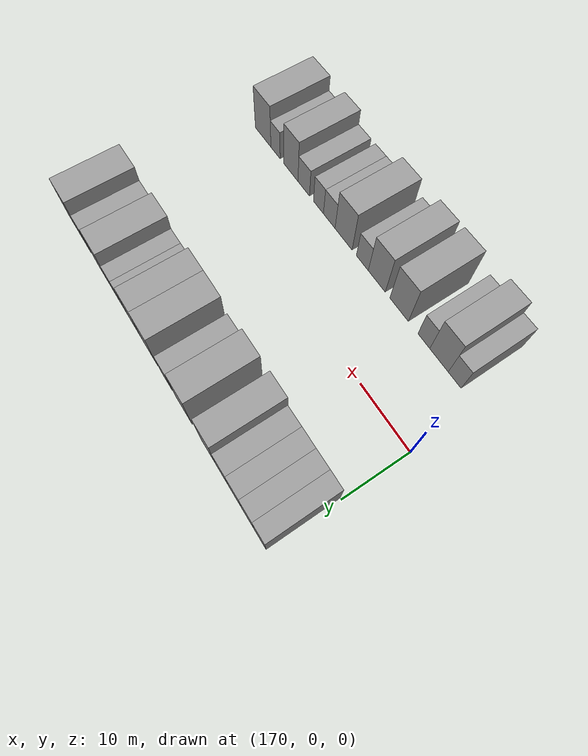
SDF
<sdf version="1.6">
 <world name="default">
  <model name="building_40">
   <static>1</static>
   <pose>171.5442 15.0000 0 0.000000 0.000000 1.570796</pose>
   <link name="link">
    <pose>0 0 3.00 0 0 0</pose>
    <collision name="collision"><geometry><box><size>10.0000 2.5584 6.0000</size></box></geometry></collision>
    <visual name="visual">
     <cast_shadows>0</cast_shadows>
     <geometry><box><size>10.0000 2.5584 6.0000</size></box></geometry>
     <material>
      <script>
       <uri>model://grey_wall/materials/scripts</uri>
       <uri>model://grey_wall/materials/textures</uri>
       <name>vrc/grey_wall</name>
      </script>
     </material>
    </visual>
   </link>
  </model>
  <model name="building_41">
   <static>1</static>
   <pose>174.1778 15.0000 0 0.000000 0.000000 1.570796</pose>
   <link name="link">
    <pose>0 0 3.00 0 0 0</pose>
    <collision name="collision"><geometry><box><size>10.0000 2.7087 6.0000</size></box></geometry></collision>
    <visual name="visual">
     <cast_shadows>0</cast_shadows>
     <geometry><box><size>10.0000 2.7087 6.0000</size></box></geometry>
     <material>
      <script>
       <uri>model://grey_wall/materials/scripts</uri>
       <uri>model://grey_wall/materials/textures</uri>
       <name>vrc/grey_wall</name>
      </script>
     </material>
    </visual>
   </link>
  </model>
  <model name="building_42">
   <static>1</static>
   <pose>176.9479 15.0000 0 0.000000 0.000000 1.570796</pose>
   <link name="link">
    <pose>0 0 3.00 0 0 0</pose>
    <collision name="collision"><geometry><box><size>10.0000 2.8315 6.0000</size></box></geometry></collision>
    <visual name="visual">
     <cast_shadows>0</cast_shadows>
     <geometry><box><size>10.0000 2.8315 6.0000</size></box></geometry>
     <material>
      <script>
       <uri>model://grey_wall/materials/scripts</uri>
       <uri>model://grey_wall/materials/textures</uri>
       <name>vrc/grey_wall</name>
      </script>
     </material>
    </visual>
   </link>
  </model>
  <model name="building_43">
   <static>1</static>
   <pose>179.8066 15.0000 0 0.000000 0.000000 1.570796</pose>
   <link name="link">
    <pose>0 0 3.00 0 0 0</pose>
    <collision name="collision"><geometry><box><size>10.0000 2.8860 6.0000</size></box></geometry></collision>
    <visual name="visual">
     <cast_shadows>0</cast_shadows>
     <geometry><box><size>10.0000 2.8860 6.0000</size></box></geometry>
     <material>
      <script>
       <uri>model://grey_wall/materials/scripts</uri>
       <uri>model://grey_wall/materials/textures</uri>
       <name>vrc/grey_wall</name>
      </script>
     </material>
    </visual>
   </link>
  </model>
  <model name="building_44">
   <static>1</static>
   <pose>183.0724 15.0000 0 0.000000 0.000000 1.570796</pose>
   <link name="link">
    <pose>0 0 4.50 0 0 0</pose>
    <collision name="collision"><geometry><box><size>10.0000 3.6456 9.0000</size></box></geometry></collision>
    <visual name="visual">
     <cast_shadows>0</cast_shadows>
     <geometry><box><size>10.0000 3.6456 9.0000</size></box></geometry>
     <material>
      <script>
       <uri>model://grey_wall/materials/scripts</uri>
       <uri>model://grey_wall/materials/textures</uri>
       <name>vrc/grey_wall</name>
      </script>
     </material>
    </visual>
   </link>
  </model>
  <model name="building_45">
   <static>1</static>
   <pose>188.8882 15.0000 0 0.000000 0.000000 1.570796</pose>
   <link name="link">
    <pose>0 0 4.50 0 0 0</pose>
    <collision name="collision"><geometry><box><size>10.0000 3.9860 9.0000</size></box></geometry></collision>
    <visual name="visual">
     <cast_shadows>0</cast_shadows>
     <geometry><box><size>10.0000 3.9860 9.0000</size></box></geometry>
     <material>
      <script>
       <uri>model://grey_wall/materials/scripts</uri>
       <uri>model://grey_wall/materials/textures</uri>
       <name>vrc/grey_wall</name>
      </script>
     </material>
    </visual>
   </link>
  </model>
  <model name="building_46">
   <static>1</static>
   <pose>193.2553 15.0000 0 0.000000 0.000000 1.570796</pose>
   <link name="link">
    <pose>0 0 3.00 0 0 0</pose>
    <collision name="collision"><geometry><box><size>10.0000 2.7483 6.0000</size></box></geometry></collision>
    <visual name="visual">
     <cast_shadows>0</cast_shadows>
     <geometry><box><size>10.0000 2.7483 6.0000</size></box></geometry>
     <material>
      <script>
       <uri>model://grey_wall/materials/scripts</uri>
       <uri>model://grey_wall/materials/textures</uri>
       <name>vrc/grey_wall</name>
      </script>
     </material>
    </visual>
   </link>
  </model>
  <model name="building_47">
   <static>1</static>
   <pose>197.7018 15.0000 0 0.000000 0.000000 1.570796</pose>
   <link name="link">
    <pose>0 0 4.50 0 0 0</pose>
    <collision name="collision"><geometry><box><size>10.0000 4.1447 9.0000</size></box></geometry></collision>
    <visual name="visual">
     <cast_shadows>0</cast_shadows>
     <geometry><box><size>10.0000 4.1447 9.0000</size></box></geometry>
     <material>
      <script>
       <uri>model://grey_wall/materials/scripts</uri>
       <uri>model://grey_wall/materials/textures</uri>
       <name>vrc/grey_wall</name>
      </script>
     </material>
    </visual>
   </link>
  </model>
  <model name="building_48">
   <static>1</static>
   <pose>201.6112 15.0000 0 0.000000 0.000000 1.570796</pose>
   <link name="link">
    <pose>0 0 4.50 0 0 0</pose>
    <collision name="collision"><geometry><box><size>10.0000 3.6740 9.0000</size></box></geometry></collision>
    <visual name="visual">
     <cast_shadows>0</cast_shadows>
     <geometry><box><size>10.0000 3.6740 9.0000</size></box></geometry>
     <material>
      <script>
       <uri>model://grey_wall/materials/scripts</uri>
       <uri>model://grey_wall/materials/textures</uri>
       <name>vrc/grey_wall</name>
      </script>
     </material>
    </visual>
   </link>
  </model>
  <model name="building_49">
   <static>1</static>
   <pose>204.8056 15.0000 0 0.000000 0.000000 1.570796</pose>
   <link name="link">
    <pose>0 0 3.00 0 0 0</pose>
    <collision name="collision"><geometry><box><size>10.0000 2.7148 6.0000</size></box></geometry></collision>
    <visual name="visual">
     <cast_shadows>0</cast_shadows>
     <geometry><box><size>10.0000 2.7148 6.0000</size></box></geometry>
     <material>
      <script>
       <uri>model://grey_wall/materials/scripts</uri>
       <uri>model://grey_wall/materials/textures</uri>
       <name>vrc/grey_wall</name>
      </script>
     </material>
    </visual>
   </link>
  </model>
  <model name="building_50">
   <static>1</static>
   <pose>207.4383 15.0000 0 0.000000 0.000000 1.570796</pose>
   <link name="link">
    <pose>0 0 3.00 0 0 0</pose>
    <collision name="collision"><geometry><box><size>10.0000 2.5505 6.0000</size></box></geometry></collision>
    <visual name="visual">
     <cast_shadows>0</cast_shadows>
     <geometry><box><size>10.0000 2.5505 6.0000</size></box></geometry>
     <material>
      <script>
       <uri>model://grey_wall/materials/scripts</uri>
       <uri>model://grey_wall/materials/textures</uri>
       <name>vrc/grey_wall</name>
      </script>
     </material>
    </visual>
   </link>
  </model>
  <model name="building_51">
   <static>1</static>
   <pose>210.7949 15.0000 0 0.000000 0.000000 1.570796</pose>
   <link name="link">
    <pose>0 0 4.50 0 0 0</pose>
    <collision name="collision"><geometry><box><size>10.0000 4.1627 9.0000</size></box></geometry></collision>
    <visual name="visual">
     <cast_shadows>0</cast_shadows>
     <geometry><box><size>10.0000 4.1627 9.0000</size></box></geometry>
     <material>
      <script>
       <uri>model://grey_wall/materials/scripts</uri>
       <uri>model://grey_wall/materials/textures</uri>
       <name>vrc/grey_wall</name>
      </script>
     </material>
    </visual>
   </link>
  </model>
  <model name="building_52">
   <static>1</static>
   <pose>216.1928 15.0000 0 0.000000 0.000000 1.570796</pose>
   <link name="link">
    <pose>0 0 3.00 0 0 0</pose>
    <collision name="collision"><geometry><box><size>10.0000 2.6331 6.0000</size></box></geometry></collision>
    <visual name="visual">
     <cast_shadows>0</cast_shadows>
     <geometry><box><size>10.0000 2.6331 6.0000</size></box></geometry>
     <material>
      <script>
       <uri>model://grey_wall/materials/scripts</uri>
       <uri>model://grey_wall/materials/textures</uri>
       <name>vrc/grey_wall</name>
      </script>
     </material>
    </visual>
   </link>
  </model>
  <model name="building_53">
   <static>1</static>
   <pose>219.7140 15.0000 0 0.000000 0.000000 1.570796</pose>
   <link name="link">
    <pose>0 0 4.50 0 0 0</pose>
    <collision name="collision"><geometry><box><size>10.0000 4.4093 9.0000</size></box></geometry></collision>
    <visual name="visual">
     <cast_shadows>0</cast_shadows>
     <geometry><box><size>10.0000 4.4093 9.0000</size></box></geometry>
     <material>
      <script>
       <uri>model://grey_wall/materials/scripts</uri>
       <uri>model://grey_wall/materials/textures</uri>
       <name>vrc/grey_wall</name>
      </script>
     </material>
    </visual>
   </link>
  </model>
  <model name="building_93">
   <static>1</static>
   <pose>174.0330 -15.0000 0 0.000000 0.000000 1.570796</pose>
   <link name="link">
    <pose>0 0 3.00 0 0 0</pose>
    <collision name="collision"><geometry><box><size>10.0000 2.5015 6.0000</size></box></geometry></collision>
    <visual name="visual">
     <cast_shadows>0</cast_shadows>
     <geometry><box><size>10.0000 2.5015 6.0000</size></box></geometry>
     <material>
      <script>
       <uri>model://grey_wall/materials/scripts</uri>
       <uri>model://grey_wall/materials/textures</uri>
       <name>vrc/grey_wall</name>
      </script>
     </material>
    </visual>
   </link>
  </model>
  <model name="building_94">
   <static>1</static>
   <pose>177.1217 -15.0000 0 0.000000 0.000000 1.570796</pose>
   <link name="link">
    <pose>0 0 4.50 0 0 0</pose>
    <collision name="collision"><geometry><box><size>10.0000 3.6760 9.0000</size></box></geometry></collision>
    <visual name="visual">
     <cast_shadows>0</cast_shadows>
     <geometry><box><size>10.0000 3.6760 9.0000</size></box></geometry>
     <material>
      <script>
       <uri>model://grey_wall/materials/scripts</uri>
       <uri>model://grey_wall/materials/textures</uri>
       <name>vrc/grey_wall</name>
      </script>
     </material>
    </visual>
   </link>
  </model>
  <model name="building_95">
   <static>1</static>
   <pose>180.1760 -15.0000 0 0.000000 0.000000 1.570796</pose>
   <link name="link">
    <pose>0 0 3.00 0 0 0</pose>
    <collision name="collision"><geometry><box><size>10.0000 2.4325 6.0000</size></box></geometry></collision>
    <visual name="visual">
     <cast_shadows>0</cast_shadows>
     <geometry><box><size>10.0000 2.4325 6.0000</size></box></geometry>
     <material>
      <script>
       <uri>model://grey_wall/materials/scripts</uri>
       <uri>model://grey_wall/materials/textures</uri>
       <name>vrc/grey_wall</name>
      </script>
     </material>
    </visual>
   </link>
  </model>
  <model name="building_96">
   <static>1</static>
   <pose>185.3817 -15.0000 0 0.000000 0.000000 1.570796</pose>
   <link name="link">
    <pose>0 0 4.50 0 0 0</pose>
    <collision name="collision"><geometry><box><size>10.0000 3.9789 9.0000</size></box></geometry></collision>
    <visual name="visual">
     <cast_shadows>0</cast_shadows>
     <geometry><box><size>10.0000 3.9789 9.0000</size></box></geometry>
     <material>
      <script>
       <uri>model://grey_wall/materials/scripts</uri>
       <uri>model://grey_wall/materials/textures</uri>
       <name>vrc/grey_wall</name>
      </script>
     </material>
    </visual>
   </link>
  </model>
  <model name="building_97">
   <static>1</static>
   <pose>190.2618 -15.0000 0 0.000000 0.000000 1.570796</pose>
   <link name="link">
    <pose>0 0 4.50 0 0 0</pose>
    <collision name="collision"><geometry><box><size>10.0000 3.7813 9.0000</size></box></geometry></collision>
    <visual name="visual">
     <cast_shadows>0</cast_shadows>
     <geometry><box><size>10.0000 3.7813 9.0000</size></box></geometry>
     <material>
      <script>
       <uri>model://grey_wall/materials/scripts</uri>
       <uri>model://grey_wall/materials/textures</uri>
       <name>vrc/grey_wall</name>
      </script>
     </material>
    </visual>
   </link>
  </model>
  <model name="building_98">
   <static>1</static>
   <pose>193.5241 -15.0000 0 0.000000 0.000000 1.570796</pose>
   <link name="link">
    <pose>0 0 3.00 0 0 0</pose>
    <collision name="collision"><geometry><box><size>10.0000 2.7432 6.0000</size></box></geometry></collision>
    <visual name="visual">
     <cast_shadows>0</cast_shadows>
     <geometry><box><size>10.0000 2.7432 6.0000</size></box></geometry>
     <material>
      <script>
       <uri>model://grey_wall/materials/scripts</uri>
       <uri>model://grey_wall/materials/textures</uri>
       <name>vrc/grey_wall</name>
      </script>
     </material>
    </visual>
   </link>
  </model>
  <model name="building_99">
   <static>1</static>
   <pose>197.9238 -15.0000 0 0.000000 0.000000 1.570796</pose>
   <link name="link">
    <pose>0 0 4.50 0 0 0</pose>
    <collision name="collision"><geometry><box><size>10.0000 4.0564 9.0000</size></box></geometry></collision>
    <visual name="visual">
     <cast_shadows>0</cast_shadows>
     <geometry><box><size>10.0000 4.0564 9.0000</size></box></geometry>
     <material>
      <script>
       <uri>model://grey_wall/materials/scripts</uri>
       <uri>model://grey_wall/materials/textures</uri>
       <name>vrc/grey_wall</name>
      </script>
     </material>
    </visual>
   </link>
  </model>
  <model name="building_100">
   <static>1</static>
   <pose>201.3759 -15.0000 0 0.000000 0.000000 1.570796</pose>
   <link name="link">
    <pose>0 0 3.00 0 0 0</pose>
    <collision name="collision"><geometry><box><size>10.0000 2.8478 6.0000</size></box></geometry></collision>
    <visual name="visual">
     <cast_shadows>0</cast_shadows>
     <geometry><box><size>10.0000 2.8478 6.0000</size></box></geometry>
     <material>
      <script>
       <uri>model://grey_wall/materials/scripts</uri>
       <uri>model://grey_wall/materials/textures</uri>
       <name>vrc/grey_wall</name>
      </script>
     </material>
    </visual>
   </link>
  </model>
  <model name="building_101">
   <static>1</static>
   <pose>204.0463 -15.0000 0 0.000000 0.000000 1.570796</pose>
   <link name="link">
    <pose>0 0 3.00 0 0 0</pose>
    <collision name="collision"><geometry><box><size>10.0000 2.4931 6.0000</size></box></geometry></collision>
    <visual name="visual">
     <cast_shadows>0</cast_shadows>
     <geometry><box><size>10.0000 2.4931 6.0000</size></box></geometry>
     <material>
      <script>
       <uri>model://grey_wall/materials/scripts</uri>
       <uri>model://grey_wall/materials/textures</uri>
       <name>vrc/grey_wall</name>
      </script>
     </material>
    </visual>
   </link>
  </model>
  <model name="building_102">
   <static>1</static>
   <pose>207.7692 -15.0000 0 0.000000 0.000000 1.570796</pose>
   <link name="link">
    <pose>0 0 3.00 0 0 0</pose>
    <collision name="collision"><geometry><box><size>10.0000 2.9527 6.0000</size></box></geometry></collision>
    <visual name="visual">
     <cast_shadows>0</cast_shadows>
     <geometry><box><size>10.0000 2.9527 6.0000</size></box></geometry>
     <material>
      <script>
       <uri>model://grey_wall/materials/scripts</uri>
       <uri>model://grey_wall/materials/textures</uri>
       <name>vrc/grey_wall</name>
      </script>
     </material>
    </visual>
   </link>
  </model>
  <model name="building_103">
   <static>1</static>
   <pose>211.1140 -15.0000 0 0.000000 0.000000 1.570796</pose>
   <link name="link">
    <pose>0 0 4.50 0 0 0</pose>
    <collision name="collision"><geometry><box><size>10.0000 3.7369 9.0000</size></box></geometry></collision>
    <visual name="visual">
     <cast_shadows>0</cast_shadows>
     <geometry><box><size>10.0000 3.7369 9.0000</size></box></geometry>
     <material>
      <script>
       <uri>model://grey_wall/materials/scripts</uri>
       <uri>model://grey_wall/materials/textures</uri>
       <name>vrc/grey_wall</name>
      </script>
     </material>
    </visual>
   </link>
  </model>
  <model name="building_104">
   <static>1</static>
   <pose>215.2346 -15.0000 0 0.000000 0.000000 1.570796</pose>
   <link name="link">
    <pose>0 0 3.00 0 0 0</pose>
    <collision name="collision"><geometry><box><size>10.0000 2.5043 6.0000</size></box></geometry></collision>
    <visual name="visual">
     <cast_shadows>0</cast_shadows>
     <geometry><box><size>10.0000 2.5043 6.0000</size></box></geometry>
     <material>
      <script>
       <uri>model://grey_wall/materials/scripts</uri>
       <uri>model://grey_wall/materials/textures</uri>
       <name>vrc/grey_wall</name>
      </script>
     </material>
    </visual>
   </link>
  </model>
  <model name="building_105">
   <static>1</static>
   <pose>218.6475 -15.0000 0 0.000000 0.000000 1.570796</pose>
   <link name="link">
    <pose>0 0 4.50 0 0 0</pose>
    <collision name="collision"><geometry><box><size>10.0000 4.3215 9.0000</size></box></geometry></collision>
    <visual name="visual">
     <cast_shadows>0</cast_shadows>
     <geometry><box><size>10.0000 4.3215 9.0000</size></box></geometry>
     <material>
      <script>
       <uri>model://grey_wall/materials/scripts</uri>
       <uri>model://grey_wall/materials/textures</uri>
       <name>vrc/grey_wall</name>
      </script>
     </material>
    </visual>
   </link>
  </model>
 </world>
</sdf>
